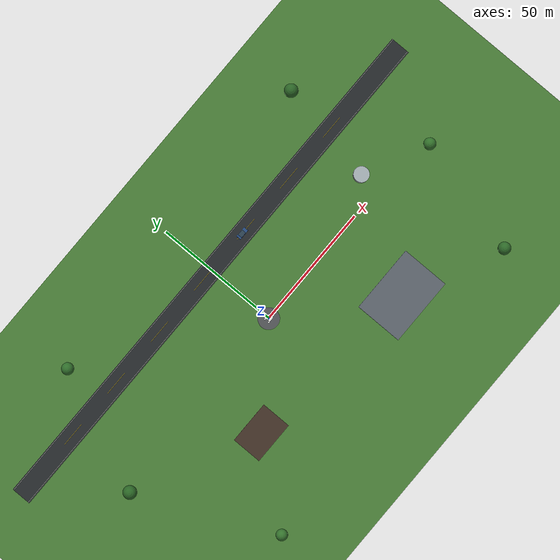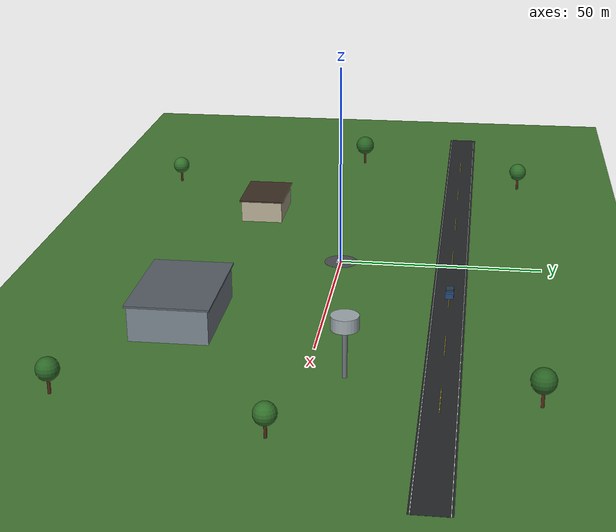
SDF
<?xml version="1.0" encoding="UTF-8"?>
<sdf version="1.9">
  <world name="training_field">
    <physics type="ode">
      <max_step_size>0.004</max_step_size>
      <real_time_factor>1.0</real_time_factor>
      <real_time_update_rate>250</real_time_update_rate>
    </physics>
    <gravity>0 0 -9.8</gravity>
    <magnetic_field>6e-06 2.3e-05 -4.2e-05</magnetic_field>
    <atmosphere type="adiabatic"/>
    <scene>
      <grid>false</grid>
      <ambient>0.48 0.50 0.52 1</ambient>
      <background>0.55 0.72 0.90 1</background>
      <shadows>true</shadows>
    </scene>

    <light name="sunUTC" type="directional">
      <pose>0 0 500 0 0 0</pose>
      <cast_shadows>true</cast_shadows>
      <intensity>1.05</intensity>
      <direction>-0.32 0.42 -0.85</direction>
      <diffuse>0.96 0.93 0.86 1</diffuse>
      <specular>0.24 0.24 0.22 1</specular>
      <attenuation>
        <range>2000</range>
        <linear>0</linear>
        <constant>1</constant>
        <quadratic>0</quadratic>
      </attenuation>
    </light>

    <model name="ground_plane">
      <static>true</static>
      <link name="link">
        <collision name="collision">
          <geometry><plane><normal>0 0 1</normal><size>1 1</size></plane></geometry>
          <surface><friction><ode/></friction><bounce/><contact/></surface>
        </collision>
        <visual name="grass">
          <geometry><plane><normal>0 0 1</normal><size>500 500</size></plane></geometry>
          <material>
            <ambient>0.20 0.34 0.16 1</ambient>
            <diffuse>0.27 0.47 0.20 1</diffuse>
            <specular>0.04 0.04 0.04 1</specular>
          </material>
        </visual>
      </link>
    </model>

    <model name="helipad">
      <static>true</static>
      <pose>0 0 0.006 0 0 0</pose>
      <link name="link">
        <visual name="pad">
          <geometry><cylinder><radius>4.2</radius><length>0.012</length></cylinder></geometry>
          <material><ambient>0.23 0.24 0.25 1</ambient><diffuse>0.30 0.31 0.32 1</diffuse><specular>0.08 0.08 0.08 1</specular></material>
        </visual>
        <visual name="h_left">
          <pose>0 -0.9 0.012 0 0 0</pose>
          <geometry><box><size>2.7 0.38 0.01</size></box></geometry>
          <material><ambient>0.95 0.95 0.93 1</ambient><diffuse>0.98 0.98 0.96 1</diffuse></material>
        </visual>
        <visual name="h_right">
          <pose>0 0.9 0.012 0 0 0</pose>
          <geometry><box><size>2.7 0.38 0.01</size></box></geometry>
          <material><ambient>0.95 0.95 0.93 1</ambient><diffuse>0.98 0.98 0.96 1</diffuse></material>
        </visual>
        <visual name="h_cross">
          <pose>0 0 0.013 0 0 0</pose>
          <geometry><box><size>0.42 2.15 0.01</size></box></geometry>
          <material><ambient>0.95 0.95 0.93 1</ambient><diffuse>0.98 0.98 0.96 1</diffuse></material>
        </visual>
      </link>
    </model>

    <model name="service_road">
      <static>true</static>
      <pose>0 28 0.012 0 0 0</pose>
      <link name="link">
        <visual name="asphalt">
          <geometry><box><size>220 8 0.024</size></box></geometry>
          <material><ambient>0.10 0.11 0.12 1</ambient><diffuse>0.14 0.15 0.16 1</diffuse><specular>0.04 0.04 0.04 1</specular></material>
        </visual>
        <visual name="edge_north">
          <pose>0 3.55 0.017 0 0 0</pose>
          <geometry><box><size>220 0.12 0.01</size></box></geometry>
          <material><ambient>0.90 0.90 0.86 1</ambient><diffuse>0.96 0.96 0.92 1</diffuse></material>
        </visual>
        <visual name="edge_south">
          <pose>0 -3.55 0.017 0 0 0</pose>
          <geometry><box><size>220 0.12 0.01</size></box></geometry>
          <material><ambient>0.90 0.90 0.86 1</ambient><diffuse>0.96 0.96 0.92 1</diffuse></material>
        </visual>
        <visual name="center_1"><pose>-80 0 0.018 0 0 0</pose><geometry><box><size>10 0.12 0.01</size></box></geometry><material><diffuse>0.94 0.78 0.08 1</diffuse></material></visual>
        <visual name="center_2"><pose>-55 0 0.018 0 0 0</pose><geometry><box><size>10 0.12 0.01</size></box></geometry><material><diffuse>0.94 0.78 0.08 1</diffuse></material></visual>
        <visual name="center_3"><pose>-30 0 0.018 0 0 0</pose><geometry><box><size>10 0.12 0.01</size></box></geometry><material><diffuse>0.94 0.78 0.08 1</diffuse></material></visual>
        <visual name="center_4"><pose>-5 0 0.018 0 0 0</pose><geometry><box><size>10 0.12 0.01</size></box></geometry><material><diffuse>0.94 0.78 0.08 1</diffuse></material></visual>
        <visual name="center_5"><pose>20 0 0.018 0 0 0</pose><geometry><box><size>10 0.12 0.01</size></box></geometry><material><diffuse>0.94 0.78 0.08 1</diffuse></material></visual>
        <visual name="center_6"><pose>45 0 0.018 0 0 0</pose><geometry><box><size>10 0.12 0.01</size></box></geometry><material><diffuse>0.94 0.78 0.08 1</diffuse></material></visual>
        <visual name="center_7"><pose>70 0 0.018 0 0 0</pose><geometry><box><size>10 0.12 0.01</size></box></geometry><material><diffuse>0.94 0.78 0.08 1</diffuse></material></visual>
      </link>
    </model>

    <model name="hangar">
      <static>true</static>
      <pose>38 -32 4 0 0 0</pose>
      <link name="link">
        <collision name="body_collision"><geometry><box><size>26 18 8</size></box></geometry></collision>
        <visual name="body">
          <geometry><box><size>26 18 8</size></box></geometry>
          <material><ambient>0.36 0.39 0.42 1</ambient><diffuse>0.48 0.52 0.56 1</diffuse><specular>0.22 0.22 0.22 1</specular></material>
        </visual>
        <visual name="door">
          <pose>-13.01 0 -0.8 0 1.5708 0</pose>
          <geometry><box><size>6.4 10.5 0.08</size></box></geometry>
          <material><ambient>0.09 0.11 0.13 1</ambient><diffuse>0.13 0.16 0.18 1</diffuse></material>
        </visual>
        <visual name="roof">
          <pose>0 0 4.35 0 0 0</pose>
          <geometry><box><size>27 19 0.45</size></box></geometry>
          <material><ambient>0.24 0.27 0.30 1</ambient><diffuse>0.34 0.37 0.40 1</diffuse><specular>0.30 0.30 0.30 1</specular></material>
        </visual>
      </link>
    </model>

    <model name="operations_building">
      <static>true</static>
      <pose>-34 -25 2.8 0 0 0</pose>
      <link name="link">
        <collision name="collision"><geometry><box><size>16 11 5.6</size></box></geometry></collision>
        <visual name="body"><geometry><box><size>16 11 5.6</size></box></geometry><material><ambient>0.58 0.55 0.49 1</ambient><diffuse>0.72 0.68 0.59 1</diffuse></material></visual>
        <visual name="roof"><pose>0 0 3.05 0 0 0</pose><geometry><box><size>17 12 0.35</size></box></geometry><material><diffuse>0.24 0.18 0.14 1</diffuse></material></visual>
        <visual name="window_1"><pose>-8.01 -2.7 0.3 0 1.5708 0</pose><geometry><box><size>1.4 2.2 0.06</size></box></geometry><material><ambient>0.10 0.20 0.28 1</ambient><diffuse>0.18 0.32 0.42 1</diffuse><specular>0.7 0.7 0.7 1</specular></material></visual>
        <visual name="window_2"><pose>-8.01 2.7 0.3 0 1.5708 0</pose><geometry><box><size>1.4 2.2 0.06</size></box></geometry><material><ambient>0.10 0.20 0.28 1</ambient><diffuse>0.18 0.32 0.42 1</diffuse><specular>0.7 0.7 0.7 1</specular></material></visual>
      </link>
    </model>

    <model name="water_tower">
      <static>true</static>
      <pose>62 8 0 0 0 0</pose>
      <link name="link">
        <collision name="mast_collision"><pose>0 0 6 0 0 0</pose><geometry><cylinder><radius>0.55</radius><length>12</length></cylinder></geometry></collision>
        <visual name="mast"><pose>0 0 6 0 0 0</pose><geometry><cylinder><radius>0.55</radius><length>12</length></cylinder></geometry><material><diffuse>0.42 0.45 0.47 1</diffuse><specular>0.35 0.35 0.35 1</specular></material></visual>
        <collision name="tank_collision"><pose>0 0 12.5 0 0 0</pose><geometry><cylinder><radius>3.0</radius><length>3.0</length></cylinder></geometry></collision>
        <visual name="tank"><pose>0 0 12.5 0 0 0</pose><geometry><cylinder><radius>3.0</radius><length>3.0</length></cylinder></geometry><material><diffuse>0.62 0.66 0.68 1</diffuse><specular>0.42 0.42 0.42 1</specular></material></visual>
      </link>
    </model>

    <model name="parked_vehicle">
      <static>true</static>
      <pose>18 28 0.65 0 0 0</pose>
      <link name="link">
        <collision name="body_collision"><geometry><box><size>4.4 1.9 1.3</size></box></geometry></collision>
        <visual name="body"><geometry><box><size>4.4 1.9 1.3</size></box></geometry><material><diffuse>0.14 0.28 0.48 1</diffuse><specular>0.28 0.28 0.28 1</specular></material></visual>
        <visual name="cabin"><pose>-0.25 0 0.78 0 0 0</pose><geometry><box><size>2.4 1.7 0.75</size></box></geometry><material><diffuse>0.16 0.24 0.30 1</diffuse><specular>0.55 0.55 0.55 1</specular></material></visual>
      </link>
    </model>

    <model name="tree_nw"><static>true</static><pose>-62 45 0 0 0 0</pose><link name="link"><collision name="trunk_collision"><pose>0 0 2.3 0 0 0</pose><geometry><cylinder><radius>0.35</radius><length>4.6</length></cylinder></geometry></collision><visual name="trunk"><pose>0 0 2.3 0 0 0</pose><geometry><cylinder><radius>0.35</radius><length>4.6</length></cylinder></geometry><material><diffuse>0.28 0.16 0.08 1</diffuse></material></visual><visual name="crown"><pose>0 0 5.3 0 0 0</pose><geometry><sphere><radius>2.4</radius></sphere></geometry><material><diffuse>0.18 0.42 0.16 1</diffuse></material></visual></link></model>
    <model name="tree_ne"><static>true</static><pose>70 48 0 0 0 0</pose><link name="link"><collision name="trunk_collision"><pose>0 0 2.5 0 0 0</pose><geometry><cylinder><radius>0.38</radius><length>5</length></cylinder></geometry></collision><visual name="trunk"><pose>0 0 2.5 0 0 0</pose><geometry><cylinder><radius>0.38</radius><length>5</length></cylinder></geometry><material><diffuse>0.30 0.17 0.08 1</diffuse></material></visual><visual name="crown"><pose>0 0 5.8 0 0 0</pose><geometry><sphere><radius>2.7</radius></sphere></geometry><material><diffuse>0.16 0.38 0.14 1</diffuse></material></visual></link></model>
    <model name="tree_sw"><static>true</static><pose>-58 -55 0 0 0 0</pose><link name="link"><collision name="trunk_collision"><pose>0 0 2.1 0 0 0</pose><geometry><cylinder><radius>0.32</radius><length>4.2</length></cylinder></geometry></collision><visual name="trunk"><pose>0 0 2.1 0 0 0</pose><geometry><cylinder><radius>0.32</radius><length>4.2</length></cylinder></geometry><material><diffuse>0.27 0.15 0.08 1</diffuse></material></visual><visual name="crown"><pose>0 0 5.0 0 0 0</pose><geometry><sphere><radius>2.3</radius></sphere></geometry><material><diffuse>0.20 0.44 0.17 1</diffuse></material></visual></link></model>
    <model name="tree_se"><static>true</static><pose>76 -50 0 0 0 0</pose><link name="link"><collision name="trunk_collision"><pose>0 0 2.4 0 0 0</pose><geometry><cylinder><radius>0.36</radius><length>4.8</length></cylinder></geometry></collision><visual name="trunk"><pose>0 0 2.4 0 0 0</pose><geometry><cylinder><radius>0.36</radius><length>4.8</length></cylinder></geometry><material><diffuse>0.29 0.16 0.08 1</diffuse></material></visual><visual name="crown"><pose>0 0 5.5 0 0 0</pose><geometry><sphere><radius>2.5</radius></sphere></geometry><material><diffuse>0.17 0.40 0.15 1</diffuse></material></visual></link></model>
    <model name="tree_west"><static>true</static><pose>-82 -2 0 0 0 0</pose><link name="link"><collision name="trunk_collision"><pose>0 0 2.5 0 0 0</pose><geometry><cylinder><radius>0.38</radius><length>5</length></cylinder></geometry></collision><visual name="trunk"><pose>0 0 2.5 0 0 0</pose><geometry><cylinder><radius>0.38</radius><length>5</length></cylinder></geometry><material><diffuse>0.28 0.16 0.08 1</diffuse></material></visual><visual name="crown"><pose>0 0 5.8 0 0 0</pose><geometry><sphere><radius>2.7</radius></sphere></geometry><material><diffuse>0.16 0.39 0.14 1</diffuse></material></visual></link></model>
    <model name="tree_east"><static>true</static><pose>88 -4 0 0 0 0</pose><link name="link"><collision name="trunk_collision"><pose>0 0 2.25 0 0 0</pose><geometry><cylinder><radius>0.34</radius><length>4.5</length></cylinder></geometry></collision><visual name="trunk"><pose>0 0 2.25 0 0 0</pose><geometry><cylinder><radius>0.34</radius><length>4.5</length></cylinder></geometry><material><diffuse>0.28 0.16 0.08 1</diffuse></material></visual><visual name="crown"><pose>0 0 5.2 0 0 0</pose><geometry><sphere><radius>2.4</radius></sphere></geometry><material><diffuse>0.19 0.43 0.16 1</diffuse></material></visual></link></model>

    <spherical_coordinates>
      <surface_model>EARTH_WGS84</surface_model>
      <world_frame_orientation>ENU</world_frame_orientation>
      <latitude_deg>47.397971057728974</latitude_deg>
      <longitude_deg>8.546163739800146</longitude_deg>
      <elevation>0</elevation>
    </spherical_coordinates>
  </world>
</sdf>
